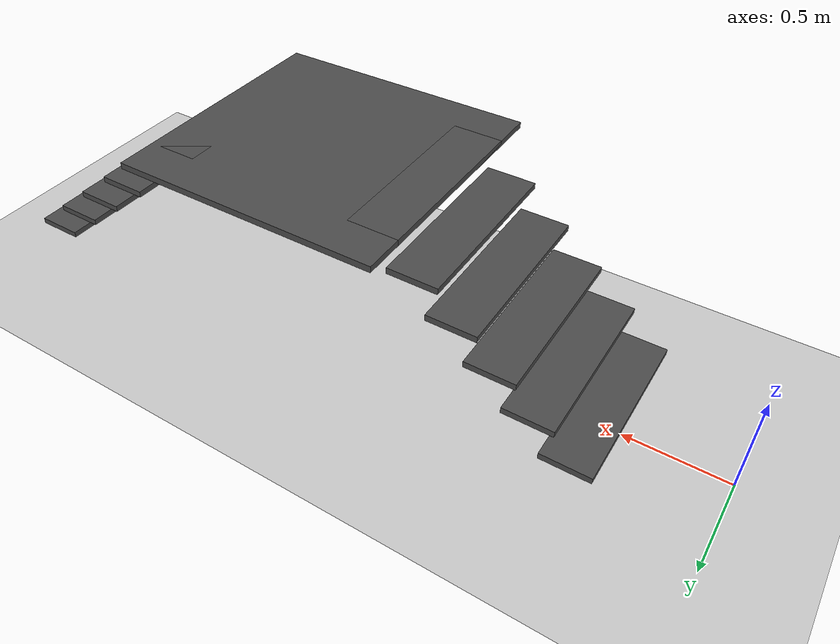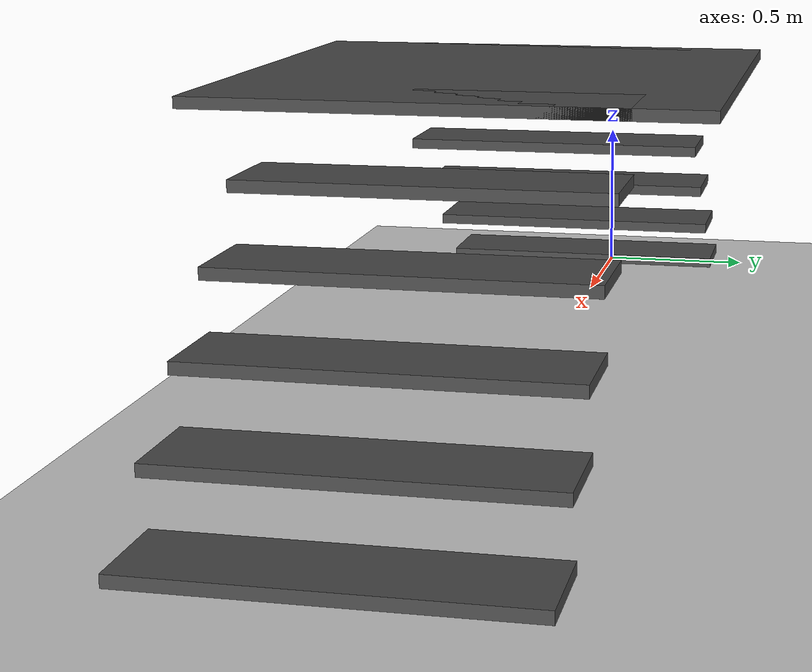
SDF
<?xml version="1.0" ?>
<sdf version="1.4">
  <world name="default">
    <include>
      <uri>model://ground_plane</uri>
    </include>
    <include>
      <uri>model://sun</uri>
    </include>

    <model name="box0">
      <static>true</static>
      <link name='box'>
        <pose>0.6 0 0.16 0 0 0</pose>
        <collision name='collision'>
          <geometry>
            <box>
              <size>0.24 0.9 0.03</size>
            </box>
          </geometry>
        </collision>
        <visual name='visual'>
          <geometry>
            <box>
              <size>0.24 0.9 0.03</size>
            </box>
          </geometry>
          <material>
            <ambient>0.3 0.3 0.3 1</ambient>
            <diffuse>0.3 0.3 0.3 1</diffuse>
            <specular>0.1 0.1 0.1 1</specular>
            <emissive>0 0 0 0</emissive>
          </material>
        </visual>
      </link>
    </model>

    <model name="box1">
      <static>true</static>
      <link name='box'>
        <pose>0.79 0 0.32 0 0 0</pose>
        <collision name='collision'>
          <geometry>
            <box>
              <size>0.24 0.9 0.03</size>
            </box>
          </geometry>
        </collision>
        <visual name='visual'>
          <geometry>
            <box>
              <size>0.24 0.9 0.03</size>
            </box>
          </geometry>
          <material>
            <ambient>0.3 0.3 0.3 1</ambient>
            <diffuse>0.3 0.3 0.3 1</diffuse>
            <specular>0.1 0.1 0.1 1</specular>
            <emissive>0 0 0 0</emissive>
          </material>
        </visual>
      </link>
    </model>

    <model name="box2">
      <static>true</static>
      <link name='box'>
        <pose>0.98 0 0.48 0 0 0</pose>
        <collision name='collision'>
          <geometry>
            <box>
              <size>0.24 0.9 0.03</size>
            </box>
          </geometry>
        </collision>
        <visual name='visual'>
          <geometry>
            <box>
              <size>0.24 0.9 0.03</size>
            </box>
          </geometry>
          <material>
            <ambient>0.3 0.3 0.3 1</ambient>
            <diffuse>0.3 0.3 0.3 1</diffuse>
            <specular>0.1 0.1 0.1 1</specular>
            <emissive>0 0 0 0</emissive>
          </material>
        </visual>
      </link>
    </model>

    <model name="box3">
      <static>true</static>
      <link name='box'>
        <pose>1.17 0 0.64 0 0 0</pose>
        <collision name='collision'>
          <geometry>
            <box>
              <size>0.24 0.9 0.03</size>
            </box>
          </geometry>
        </collision>
        <visual name='visual'>
          <geometry>
            <box>
              <size>0.24 0.9 0.03</size>
            </box>
          </geometry>
          <material>
            <ambient>0.3 0.3 0.3 1</ambient>
            <diffuse>0.3 0.3 0.3 1</diffuse>
            <specular>0.1 0.1 0.1 1</specular>
            <emissive>0 0 0 0</emissive>
          </material>
        </visual>
      </link>
    </model>

    <model name="box4">
      <static>true</static>
      <link name='box'>
        <pose>1.36 0 0.80 0 0 0</pose>
        <collision name='collision'>
          <geometry>
            <box>
              <size>0.24 0.9 0.03</size>
            </box>
          </geometry>
        </collision>
        <visual name='visual'>
          <geometry>
            <box>
              <size>0.24 0.9 0.03</size>
            </box>
          </geometry>
          <material>
            <ambient>0.3 0.3 0.3 1</ambient>
            <diffuse>0.3 0.3 0.3 1</diffuse>
            <specular>0.1 0.1 0.1 1</specular>
            <emissive>0 0 0 0</emissive>
          </material>
        </visual>
      </link>
    </model>

    <model name="box5">
      <static>true</static>
      <link name='box'>
        <pose>1.55 0 0.96 0 0 0</pose>
        <collision name='collision'>
          <geometry>
            <box>
              <size>0.24 0.9 0.03</size>
            </box>
          </geometry>
        </collision>
        <visual name='visual'>
          <geometry>
            <box>
              <size>0.24 0.9 0.03</size>
            </box>
          </geometry>
          <material>
            <ambient>0.3 0.3 0.3 1</ambient>
            <diffuse>0.3 0.3 0.3 1</diffuse>
            <specular>0.1 0.1 0.1 1</specular>
            <emissive>0 0 0 0</emissive>
          </material>
        </visual>
      </link>
    </model>

    <model name="box6">
      <static>true</static>
      <link name='box'>
        <pose>2.08 0 0.96 0 0 0</pose>
        <collision name='collision'>
          <geometry>
            <box>
              <size>1.3 1.3 0.03</size>
            </box>
          </geometry>
        </collision>
        <visual name='visual'>
          <geometry>
            <box>
              <size>1.3 1.3 0.03</size>
            </box>
          </geometry>
          <material>
            <ambient>0.3 0.3 0.3 1</ambient>
            <diffuse>0.3 0.3 0.3 1</diffuse>
            <specular>0.1 0.1 0.1 1</specular>
            <emissive>0 0 0 0</emissive>
          </material>
        </visual>
      </link>
    </model>

    <model name="box7">
      <static>true</static>
      <link name='box'>
        <pose>2.61 0 0.96 0 0 0</pose>
        <collision name='collision'>
          <geometry>
            <box>
              <size>0.24 0.9 0.03</size>
            </box>
          </geometry>
        </collision>
        <visual name='visual'>
          <geometry>
            <box>
              <size>0.24 0.9 0.03</size>
            </box>
          </geometry>
          <material>
            <ambient>0.3 0.3 0.3 1</ambient>
            <diffuse>0.3 0.3 0.3 1</diffuse>
            <specular>0.1 0.1 0.1 1</specular>
            <emissive>0 0 0 0</emissive>
          </material>
        </visual>
      </link>
    </model>

    <model name="box8">
      <static>true</static>
      <link name='box'>
        <pose>2.8 0 0.8 0 0 0</pose>
        <collision name='collision'>
          <geometry>
            <box>
              <size>0.24 0.9 0.03</size>
            </box>
          </geometry>
        </collision>
        <visual name='visual'>
          <geometry>
            <box>
              <size>0.24 0.9 0.03</size>
            </box>
          </geometry>
          <material>
            <ambient>0.3 0.3 0.3 1</ambient>
            <diffuse>0.3 0.3 0.3 1</diffuse>
            <specular>0.1 0.1 0.1 1</specular>
            <emissive>0 0 0 0</emissive>
          </material>
        </visual>
      </link>
    </model>

    <model name="box9">
      <static>true</static>
      <link name='box'>
        <pose>2.99 0 0.64 0 0 0</pose>
        <collision name='collision'>
          <geometry>
            <box>
              <size>0.24 0.9 0.03</size>
            </box>
          </geometry>
        </collision>
        <visual name='visual'>
          <geometry>
            <box>
              <size>0.24 0.9 0.03</size>
            </box>
          </geometry>
          <material>
            <ambient>0.3 0.3 0.3 1</ambient>
            <diffuse>0.3 0.3 0.3 1</diffuse>
            <specular>0.1 0.1 0.1 1</specular>
            <emissive>0 0 0 0</emissive>
          </material>
        </visual>
      </link>
    </model>

    <model name="box10">
      <static>true</static>
      <link name='box'>
        <pose>3.18 0 0.48 0 0 0</pose>
        <collision name='collision'>
          <geometry>
            <box>
              <size>0.24 0.9 0.03</size>
            </box>
          </geometry>
        </collision>
        <visual name='visual'>
          <geometry>
            <box>
              <size>0.24 0.9 0.03</size>
            </box>
          </geometry>
          <material>
            <ambient>0.3 0.3 0.3 1</ambient>
            <diffuse>0.3 0.3 0.3 1</diffuse>
            <specular>0.1 0.1 0.1 1</specular>
            <emissive>0 0 0 0</emissive>
          </material>
        </visual>
      </link>
    </model>

    <model name="box10">
      <static>true</static>
      <link name='box'>
        <pose>3.37 0 0.32 0 0 0</pose>
        <collision name='collision'>
          <geometry>
            <box>
              <size>0.24 0.9 0.03</size>
            </box>
          </geometry>
        </collision>
        <visual name='visual'>
          <geometry>
            <box>
              <size>0.24 0.9 0.03</size>
            </box>
          </geometry>
          <material>
            <ambient>0.3 0.3 0.3 1</ambient>
            <diffuse>0.3 0.3 0.3 1</diffuse>
            <specular>0.1 0.1 0.1 1</specular>
            <emissive>0 0 0 0</emissive>
          </material>
        </visual>
      </link>
    </model>

    <model name="box10">
      <static>true</static>
      <link name='box'>
        <pose>3.56 0 0.16 0 0 0</pose>
        <collision name='collision'>
          <geometry>
            <box>
              <size>0.24 0.9 0.03</size>
            </box>
          </geometry>
        </collision>
        <visual name='visual'>
          <geometry>
            <box>
              <size>0.24 0.9 0.03</size>
            </box>
          </geometry>
          <material>
            <ambient>0.3 0.3 0.3 1</ambient>
            <diffuse>0.3 0.3 0.3 1</diffuse>
            <specular>0.1 0.1 0.1 1</specular>
            <emissive>0 0 0 0</emissive>
          </material>
        </visual>
      </link>
    </model>

  </world>
</sdf>
